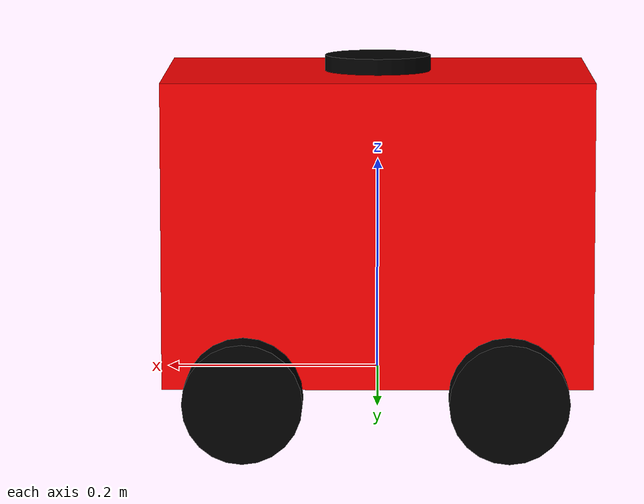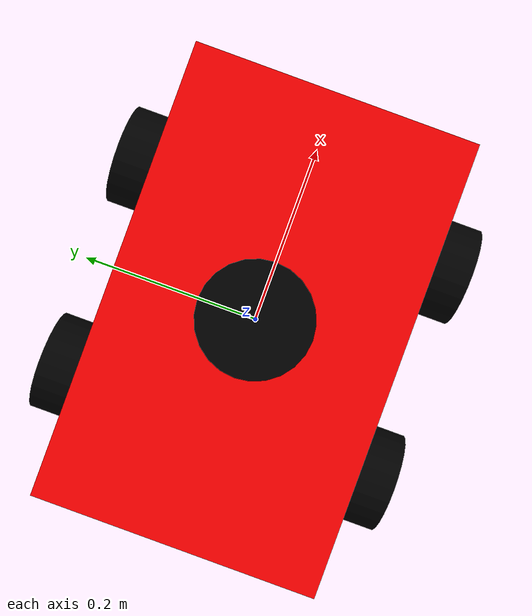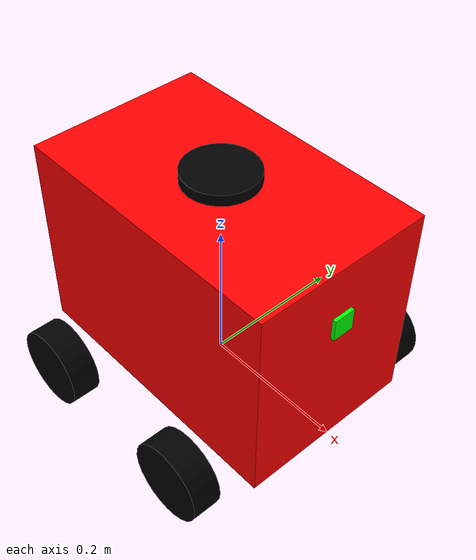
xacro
<?xml version="1.0"?>
<robot xmlns:xacro="https://www.ros.org/wiki/xacro" name="my_robot">

    <xacro:arg name="use_ros2_control" default="true"/>

    <xacro:include filename="robot_body.xacro"/>
    <xacro:include filename="lidar.xacro"/>
    <xacro:include filename="camera.xacro"/>

    <xacro:if value="$(arg use_ros2_control)">
        <xacro:include filename="ros2_control.xacro"/>
    </xacro:if>
    <xacro:unless value="$(arg use_ros2_control)">
        <xacro:include filename="gazebo_control.xacro"/>
    </xacro:unless>

</robot>

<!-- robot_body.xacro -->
<robot xmlns:xacro="https://www.ros.org/wiki/xacro">

    <xacro:include filename="inertial_macros.xacro"/>

    <!-- MATERIALS-->

    <material name="red">
        <color rgba="1 0.0 0.0 1.0"/>
    </material>

    <material name="black">
        <color rgba="0.0 0.0 0.0 1.0"/>
    </material>

    <material name="green">
        <color rgba="0.0 1 0.0 1.0"/>
    </material>

    <!-- LINKS-->

    <link name="base_link"></link>

    <link name="chassis">
        <visual>
            <geometry>
                <box size="0.4 0.25 0.285"/>
            </geometry>
            <origin xyz="0.2 0.0 0.1425" rpy="0.0 0.0 0.0"/>
            <material name="red"/>
        </visual>
        <collision>
            <geometry>
                <box size="0.4 0.25 0.285"/>
            </geometry>
            <origin xyz="0.2 0.0 0.1425" rpy="0.0 0.0 0.0"/>
        </collision>
        <xacro:inertial_box mass="0.5" x="0.4" y="0.25" z="0.285">
            <origin xyz="0.2 0.0 0.1425" rpy="0.0 0.0 0.0"/>
        </xacro:inertial_box>
    </link>
    <gazebo reference="chassis">
        <material>
            Gazebo/Red
        </material>
    </gazebo>

    <link name="left_wheel">
        <visual>
            <geometry>
                <cylinder radius="0.055" length="0.04"/>
            </geometry>
            <material name="black"/>
        </visual>
        <collision>
            <geometry>
                <cylinder radius="0.055" length="0.04"/>
            </geometry>
            <material name="black"/>
        </collision>
        <xacro:inertial_cylinder mass="0.1" length="0.04" radius="0.055">
            <origin xyz="0.0 0.0 0.0" rpy="0.0 0.0 0.0"/>
        </xacro:inertial_cylinder>
    </link>
    <gazebo reference="left_wheel">
        <material>
            Gazebo/Black
        </material>
    </gazebo>

    <link name="right_wheel">
        <visual>
            <geometry>
                <cylinder radius="0.055" length="0.04"/>
            </geometry>
            <material name="black"/>
        </visual>
        <collision>
            <geometry>
                <cylinder radius="0.055" length="0.04"/>
            </geometry>
            <material name="black"/>
        </collision>
        <xacro:inertial_cylinder mass="0.1" length="0.04" radius="0.055">
            <origin xyz="0.0 0.0 0.0" rpy="0.0 0.0 0.0"/>
        </xacro:inertial_cylinder>
    </link>
    <gazebo reference="right_wheel">
        <material>
            Gazebo/Black
        </material>
    </gazebo>

    <link name="back_left_wheel">
        <visual>
            <geometry>
                <cylinder radius="0.055" length="0.04"/>
            </geometry>
            <material name="black"/>
        </visual>
        <collision>
            <geometry>
                <cylinder radius="0.055" length="0.04"/>
            </geometry>
            <material name="black"/>
        </collision>
        <xacro:inertial_cylinder mass="0.1" length="0.04" radius="0.055">
            <origin xyz="0.0 0.0 0.0" rpy="0.0 0.0 0.0"/>
        </xacro:inertial_cylinder>
    </link>
    <gazebo reference="back_left_wheel">
        <material>
            Gazebo/Black
        </material>
    </gazebo>

    <link name="back_right_wheel">
        <visual>
            <geometry>
                <cylinder radius="0.055" length="0.04"/>
            </geometry>
            <material name="black"/>
        </visual>
        <collision>
            <geometry>
                <cylinder radius="0.055" length="0.04"/>
            </geometry>
            <material name="black"/>
        </collision>
        <xacro:inertial_cylinder mass="0.1" length="0.04" radius="0.055">
            <origin xyz="0.0 0.0 0.0" rpy="0.0 0.0 0.0"/>
        </xacro:inertial_cylinder>
    </link>
    <gazebo reference="back_right_wheel">
        <material>
            Gazebo/Black
        </material>
    </gazebo>

    <!-- JOINTS-->

    <joint name="chassis_joint" type="fixed">
        <parent link="base_link"/>
        <child link="chassis"/>
        <origin xyz="-0.2 0.0 0.0" rpy="0.0 0.0 0.0"/>
    </joint>

    <joint name="left_wheel_joint" type="continuous">
        <parent link="chassis"/>
        <child link="left_wheel"/>
        <axis xyz="0.0 0.0 1"/>
        <origin xyz="0.323 0.18 0.0" rpy="-${pi/2} 0.0 0.0"/>
    </joint>

    <joint name="right_wheel_joint" type="continuous">
        <parent link="chassis"/>
        <child link="right_wheel"/>
        <axis xyz="0.0 0.0 1"/>
        <origin xyz="0.323 -0.18 0.0" rpy="-${pi/2} 0.0 0.0"/>
    </joint>

    <joint name="back_left_wheel_joint" type="continuous">
        <parent link="chassis"/>
        <child link="back_left_wheel"/>
        <axis xyz="0.0 0.0 1"/>
        <origin xyz="0.08 0.18 0.0" rpy="-${pi/2} 0.0 0.0"/>
    </joint>

    <joint name="back_right_wheel_joint" type="continuous">
        <parent link="chassis"/>
        <child link="back_right_wheel"/>
        <axis xyz="0.0 0.0 1"/>
        <origin xyz="0.08 -0.18 0.0" rpy="-${pi/2} 0.0 0.0"/>
    </joint>

</robot>

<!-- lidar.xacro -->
<robot xmlns:xacro="http://www.ros.org/wiki/xacro">

    <link name="laser">
        <visual>
            <geometry>
                <cylinder radius="0.05" length="0.04"/>
            </geometry>
            <material name="black"/>
        </visual>
        <collision>
            <geometry>
                <cylinder radius="0.05" length="0.04"/>
            </geometry>
        </collision>
        <xacro:inertial_cylinder mass="0.1" length="0.04" radius="0.05">
            <origin xyz="0 0 0" rpy="0 0 0"/>
        </xacro:inertial_cylinder>
    </link>

    <joint name="laser_joint" type="fixed">
        <parent link="chassis"/>
        <child link="laser"/>
        <origin xyz="0.2 0 0.28" rpy="0 0 0"/>
    </joint>

    <gazebo reference="laser">
        <material>Gazebo/Black</material>

        <sensor name="laser" type="ray">
            <pose> 0 0 0 0 0 0 </pose>
            <visualize>false</visualize>
            <update_rate>10</update_rate>
            <ray>
                <scan>
                    <horizontal>
                        <samples>360</samples>
                        <min_angle>-3.14</min_angle>
                        <max_angle>3.14</max_angle>
                    </horizontal>
                </scan>
                <range>
                    <min>0.3</min>
                    <max>12</max>
                </range>
            </ray>
            <plugin name="laser_controller" filename="libgazebo_ros_ray_sensor.so">
                <ros>
                    <argument>~/out:=scan</argument>
                </ros>
                <output_type>sensor_msgs/LaserScan</output_type>
                <frame_name>laser</frame_name>
            </plugin>
        </sensor>
    </gazebo>

</robot>

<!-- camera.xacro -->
<robot xmlns:xacro="http://www.ros.org/wiki/xacro">

    <link name="camera_link">
        <visual>
            <geometry>
                <box size="0.010 0.03 0.03 "/>
            </geometry>
            <material name="green"/>
        </visual>
    </link>

    <link name="camera_link_optical"></link>

    <joint name="camera_joint" type="fixed">
        <parent link="chassis"/>
        <child link="camera_link"/>
        <origin xyz="0.4 0 0.2" rpy="0 0 0"/>
    </joint>

    <joint name="camera_optical_joint" type="fixed">
        <parent link="camera_link"/>
        <child link="camera_link_optical"/>
        <origin xyz="0 0 0" rpy="${-pi/2} 0 ${-pi/2}"/>
    </joint>

    <gazebo reference="camera_link">
        <material>Gazebo/Green</material>

        <sensor name="camera" type="camera">
            <pose> 0 0 0 0 0 0 </pose>
            <visualize>true</visualize>
            <update_rate>10</update_rate>
            <camera>
                <horizontal_fov>1.089</horizontal_fov>
                <image>
                    <format>R8G8B8</format>
                    <width>640</width>
                    <height>480</height>
                </image>
                <clip>
                    <near>0.05</near>
                    <far>8.0</far>
                </clip>
            </camera>
            <plugin name="camera_controller" filename="libgazebo_ros_camera.so">
                <frame_name>camera_link_optical</frame_name>
            </plugin>
        </sensor>
    </gazebo>

</robot>
